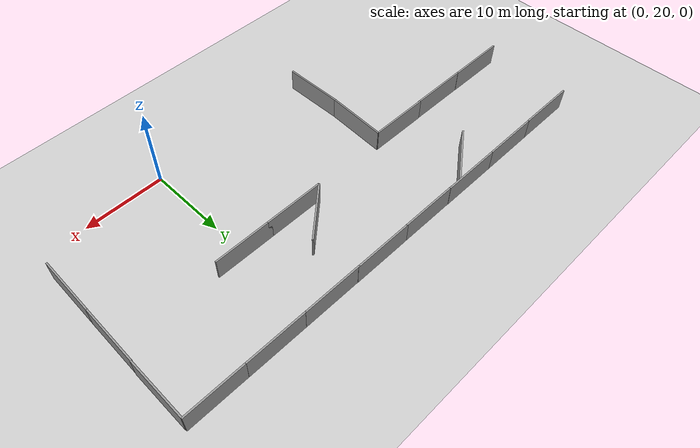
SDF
<sdf version="1.4">
 <world name="default">
  <model name="ground_plane">
   <static>1</static>
   <link name="link">
    <collision name="collision">
     <geometry><plane><normal>0 0 1</normal><size>100 100</size></plane></geometry>
     <surface><friction><ode><mu>100</mu><mu2>50</mu2></ode></friction></surface>
    </collision>
    <visual name="visual">
     <cast_shadows>0</cast_shadows>
     <geometry><plane><normal>0 0 1</normal><size>100 100</size></plane></geometry>
     <material>
      <script><uri>file://media/materials/scripts/gazebo.material</uri><name>Gazebo/Grey</name></script>
     </material>
    </visual>
    <velocity_decay><linear>0</linear><angular>0</angular></velocity_decay>
   </link>
  </model>
  <model name="grey_wall_11">
   <static>1</static>
   <link name="link">
    <pose>0 0 1.4 0 -0 0</pose>
    <collision name="collision"><geometry><box><size>7.5 0.2 2.8</size></box></geometry></collision>
    <visual name="visual">
     <cast_shadows>0</cast_shadows>
     <geometry><box><size>7.5 0.2 2.8</size></box></geometry>
     <material>
      <script>
       <uri>model://grey_wall/materials/scripts</uri>
       <uri>model://grey_wall/materials/textures</uri>
       <name>vrc/grey_wall</name>
      </script>
     </material>
    </visual>
    <velocity_decay><linear>0</linear><angular>0</angular></velocity_decay>
   </link>
   <pose>15.8981 34.2262 0 0 0 -1.58174</pose>
  </model>
  <model name="grey_wall_12">
   <static>1</static>
   <link name="link">
    <pose>0 0 1.4 0 -0 0</pose>
    <collision name="collision"><geometry><box><size>7.5 0.2 2.8</size></box></geometry></collision>
    <visual name="visual">
     <cast_shadows>0</cast_shadows>
     <geometry><box><size>7.5 0.2 2.8</size></box></geometry>
     <material>
      <script>
       <uri>model://grey_wall/materials/scripts</uri>
       <uri>model://grey_wall/materials/textures</uri>
       <name>vrc/grey_wall</name>
      </script>
     </material>
    </visual>
    <velocity_decay><linear>0</linear><angular>0</angular></velocity_decay>
   </link>
   <pose>15.8003 26.8897 0 0 0 -1.58522</pose>
  </model>
  <model name="grey_wall_14">
   <static>1</static>
   <link name="link">
    <pose>0 0 1.4 0 -0 0</pose>
    <collision name="collision"><geometry><box><size>7.5 0.2 2.8</size></box></geometry></collision>
    <visual name="visual">
     <cast_shadows>0</cast_shadows>
     <geometry><box><size>7.5 0.2 2.8</size></box></geometry>
     <material>
      <script>
       <uri>model://grey_wall/materials/scripts</uri>
       <uri>model://grey_wall/materials/textures</uri>
       <name>vrc/grey_wall</name>
      </script>
     </material>
    </visual>
    <velocity_decay><linear>0</linear><angular>0</angular></velocity_decay>
   </link>
   <pose>15.9757 41.6543 0 0 0 -1.57098</pose>
  </model>
  <model name="grey_wall_20">
   <static>1</static>
   <link name="link">
    <pose>0 0 1.4 0 -0 0</pose>
    <collision name="collision"><geometry><box><size>7.5 0.2 2.8</size></box></geometry></collision>
    <visual name="visual">
     <cast_shadows>0</cast_shadows>
     <geometry><box><size>7.5 0.2 2.8</size></box></geometry>
     <material>
      <script>
       <uri>model://grey_wall/materials/scripts</uri>
       <uri>model://grey_wall/materials/textures</uri>
       <name>vrc/grey_wall</name>
      </script>
     </material>
    </visual>
    <velocity_decay><linear>0</linear><angular>0</angular></velocity_decay>
   </link>
   <pose>-31.1365 45.5106 0 0 -0 0</pose>
  </model>
  <model name="grey_wall_21">
   <static>1</static>
   <link name="link">
    <pose>0 0 1.4 0 -0 0</pose>
    <collision name="collision"><geometry><box><size>7.5 0.2 2.8</size></box></geometry></collision>
    <visual name="visual">
     <cast_shadows>0</cast_shadows>
     <geometry><box><size>7.5 0.2 2.8</size></box></geometry>
     <material>
      <script>
       <uri>model://grey_wall/materials/scripts</uri>
       <uri>model://grey_wall/materials/textures</uri>
       <name>vrc/grey_wall</name>
      </script>
     </material>
    </visual>
    <velocity_decay><linear>0</linear><angular>0</angular></velocity_decay>
   </link>
   <pose>-24.0972 45.5131 0 0 -0 0</pose>
  </model>
  <model name="grey_wall_22">
   <static>1</static>
   <link name="link">
    <pose>0 0 1.4 0 -0 0</pose>
    <collision name="collision"><geometry><box><size>7.5 0.2 2.8</size></box></geometry></collision>
    <visual name="visual">
     <cast_shadows>0</cast_shadows>
     <geometry><box><size>7.5 0.2 2.8</size></box></geometry>
     <material>
      <script>
       <uri>model://grey_wall/materials/scripts</uri>
       <uri>model://grey_wall/materials/textures</uri>
       <name>vrc/grey_wall</name>
      </script>
     </material>
    </visual>
    <velocity_decay><linear>0</linear><angular>0</angular></velocity_decay>
   </link>
   <pose>-16.9789 45.491 0 0 -0 0</pose>
  </model>
  <model name="grey_wall_23">
   <static>1</static>
   <link name="link">
    <pose>0 0 1.4 0 -0 0</pose>
    <collision name="collision"><geometry><box><size>7.5 0.2 2.8</size></box></geometry></collision>
    <visual name="visual">
     <cast_shadows>0</cast_shadows>
     <geometry><box><size>7.5 0.2 2.8</size></box></geometry>
     <material>
      <script>
       <uri>model://grey_wall/materials/scripts</uri>
       <uri>model://grey_wall/materials/textures</uri>
       <name>vrc/grey_wall</name>
      </script>
     </material>
    </visual>
    <velocity_decay><linear>0</linear><angular>0</angular></velocity_decay>
   </link>
   <pose>-9.61692 45.4978 0 0 -0 0</pose>
  </model>
  <model name="grey_wall_24">
   <static>1</static>
   <link name="link">
    <pose>0 0 1.4 0 -0 0</pose>
    <collision name="collision"><geometry><box><size>7.5 0.2 2.8</size></box></geometry></collision>
    <visual name="visual">
     <cast_shadows>0</cast_shadows>
     <geometry><box><size>7.5 0.2 2.8</size></box></geometry>
     <material>
      <script>
       <uri>model://grey_wall/materials/scripts</uri>
       <uri>model://grey_wall/materials/textures</uri>
       <name>vrc/grey_wall</name>
      </script>
     </material>
    </visual>
    <velocity_decay><linear>0</linear><angular>0</angular></velocity_decay>
   </link>
   <pose>-2.36117 45.4782 0 0 -0 0</pose>
  </model>
  <model name="grey_wall_25">
   <static>1</static>
   <link name="link">
    <pose>0 0 1.4 0 -0 0</pose>
    <collision name="collision"><geometry><box><size>7.5 0.2 2.8</size></box></geometry></collision>
    <visual name="visual">
     <cast_shadows>0</cast_shadows>
     <geometry><box><size>7.5 0.2 2.8</size></box></geometry>
     <material>
      <script>
       <uri>model://grey_wall/materials/scripts</uri>
       <uri>model://grey_wall/materials/textures</uri>
       <name>vrc/grey_wall</name>
      </script>
     </material>
    </visual>
    <velocity_decay><linear>0</linear><angular>0</angular></velocity_decay>
   </link>
   <pose>5.03291 45.474 0 0 -0 0</pose>
  </model>
  <model name="grey_wall_26">
   <static>1</static>
   <link name="link">
    <pose>0 0 1.4 0 -0 0</pose>
    <collision name="collision"><geometry><box><size>7.5 0.2 2.8</size></box></geometry></collision>
    <visual name="visual">
     <cast_shadows>0</cast_shadows>
     <geometry><box><size>7.5 0.2 2.8</size></box></geometry>
     <material>
      <script>
       <uri>model://grey_wall/materials/scripts</uri>
       <uri>model://grey_wall/materials/textures</uri>
       <name>vrc/grey_wall</name>
      </script>
     </material>
    </visual>
    <velocity_decay><linear>0</linear><angular>0</angular></velocity_decay>
   </link>
   <pose>12.2917 45.4674 0 0 -0 0</pose>
  </model>
  <model name="grey_wall_28">
   <static>1</static>
   <link name="link">
    <pose>0 0 1.4 0 -0 0</pose>
    <collision name="collision"><geometry><box><size>7.5 0.2 2.8</size></box></geometry></collision>
    <visual name="visual">
     <cast_shadows>0</cast_shadows>
     <geometry><box><size>7.5 0.2 2.8</size></box></geometry>
     <material>
      <script>
       <uri>model://grey_wall/materials/scripts</uri>
       <uri>model://grey_wall/materials/textures</uri>
       <name>vrc/grey_wall</name>
      </script>
     </material>
    </visual>
    <velocity_decay><linear>0</linear><angular>0</angular></velocity_decay>
   </link>
   <pose>-21.3437 23.2399 0 0 0 -1.55853</pose>
  </model>
  <model name="grey_wall_29">
   <static>1</static>
   <link name="link">
    <pose>0 0 1.4 0 -0 0</pose>
    <collision name="collision"><geometry><box><size>7.5 0.2 2.8</size></box></geometry></collision>
    <visual name="visual">
     <cast_shadows>0</cast_shadows>
     <geometry><box><size>7.5 0.2 2.8</size></box></geometry>
     <material>
      <script>
       <uri>model://grey_wall/materials/scripts</uri>
       <uri>model://grey_wall/materials/textures</uri>
       <name>vrc/grey_wall</name>
      </script>
     </material>
    </visual>
    <velocity_decay><linear>0</linear><angular>0</angular></velocity_decay>
   </link>
   <pose>-21.1799 30.6302 0 0 -0 1.51593</pose>
  </model>
  <model name="grey_wall_30">
   <static>1</static>
   <link name="link">
    <pose>0 0 1.4 0 -0 0</pose>
    <collision name="collision"><geometry><box><size>7.5 0.2 2.8</size></box></geometry></collision>
    <visual name="visual">
     <cast_shadows>0</cast_shadows>
     <geometry><box><size>7.5 0.2 2.8</size></box></geometry>
     <material>
      <script>
       <uri>model://grey_wall/materials/scripts</uri>
       <uri>model://grey_wall/materials/textures</uri>
       <name>vrc/grey_wall</name>
      </script>
     </material>
    </visual>
    <velocity_decay><linear>0</linear><angular>0</angular></velocity_decay>
   </link>
   <pose>-39.3552 34.3146 0 0 -0 0</pose>
  </model>
  <model name="grey_wall_31">
   <static>1</static>
   <link name="link">
    <pose>0 0 1.4 0 -0 0</pose>
    <collision name="collision"><geometry><box><size>7.5 0.2 2.8</size></box></geometry></collision>
    <visual name="visual">
     <cast_shadows>0</cast_shadows>
     <geometry><box><size>7.5 0.2 2.8</size></box></geometry>
     <material>
      <script>
       <uri>model://grey_wall/materials/scripts</uri>
       <uri>model://grey_wall/materials/textures</uri>
       <name>vrc/grey_wall</name>
      </script>
     </material>
    </visual>
    <velocity_decay><linear>0</linear><angular>0</angular></velocity_decay>
   </link>
   <pose>-31.9612 34.2947 0 0 -0 0</pose>
  </model>
  <model name="grey_wall_32">
   <static>1</static>
   <link name="link">
    <pose>0 0 1.4 0 -0 0</pose>
    <collision name="collision"><geometry><box><size>7.5 0.2 2.8</size></box></geometry></collision>
    <visual name="visual">
     <cast_shadows>0</cast_shadows>
     <geometry><box><size>7.5 0.2 2.8</size></box></geometry>
     <material>
      <script>
       <uri>model://grey_wall/materials/scripts</uri>
       <uri>model://grey_wall/materials/textures</uri>
       <name>vrc/grey_wall</name>
      </script>
     </material>
    </visual>
    <velocity_decay><linear>0</linear><angular>0</angular></velocity_decay>
   </link>
   <pose>-24.72 34.324 0 0 -0 0</pose>
  </model>
  <model name="grey_wall_33">
   <static>1</static>
   <link name="link">
    <pose>0 0 1.4 0 -0 0</pose>
    <collision name="collision"><geometry><box><size>7.5 0.2 2.8</size></box></geometry></collision>
    <visual name="visual">
     <cast_shadows>0</cast_shadows>
     <geometry><box><size>7.5 0.2 2.8</size></box></geometry>
     <material>
      <script>
       <uri>model://grey_wall/materials/scripts</uri>
       <uri>model://grey_wall/materials/textures</uri>
       <name>vrc/grey_wall</name>
      </script>
     </material>
    </visual>
    <velocity_decay><linear>0</linear><angular>0</angular></velocity_decay>
   </link>
   <pose>-38.5263 45.4975 0 0 -0 0</pose>
  </model>
  <model name="grey_wall">
   <static>1</static>
   <link name="link">
    <pose>0 0 1.4 0 -0 0</pose>
    <collision name="collision"><geometry><box><size>7.5 0.2 2.8</size></box></geometry></collision>
    <visual name="visual">
     <cast_shadows>0</cast_shadows>
     <geometry><box><size>7.5 0.2 2.8</size></box></geometry>
     <material>
      <script>
       <uri>model://grey_wall/materials/scripts</uri>
       <uri>model://grey_wall/materials/textures</uri>
       <name>vrc/grey_wall</name>
      </script>
     </material>
    </visual>
    <velocity_decay><linear>0</linear><angular>0</angular></velocity_decay>
   </link>
   <pose>0 35 0 0 -0 0</pose>
  </model>
  <model name="grey_wall_5">
   <static>1</static>
   <link name="link">
    <pose>0 0 1.4 0 -0 0</pose>
    <collision name="collision"><geometry><box><size>7.5 0.2 2.8</size></box></geometry></collision>
    <visual name="visual">
     <cast_shadows>0</cast_shadows>
     <geometry><box><size>7.5 0.2 2.8</size></box></geometry>
     <material>
      <script>
       <uri>model://grey_wall/materials/scripts</uri>
       <uri>model://grey_wall/materials/textures</uri>
       <name>vrc/grey_wall</name>
      </script>
     </material>
    </visual>
    <velocity_decay><linear>0</linear><angular>0</angular></velocity_decay>
   </link>
   <pose>-7 35 0 0 -0 0</pose>
  </model>
  <model name="grey_wall_36">
   <static>1</static>
   <link name="link">
    <pose>0 0 1.4 0 -0 0</pose>
    <collision name="collision"><geometry><box><size>7.5 0.2 2.8</size></box></geometry></collision>
    <visual name="visual">
     <cast_shadows>0</cast_shadows>
     <geometry><box><size>7.5 0.2 2.8</size></box></geometry>
     <material>
      <script>
       <uri>model://grey_wall/materials/scripts</uri>
       <uri>model://grey_wall/materials/textures</uri>
       <name>vrc/grey_wall</name>
      </script>
     </material>
    </visual>
    <velocity_decay><linear>0</linear><angular>0</angular></velocity_decay>
   </link>
   <pose>-7.88989 37.4617 0 0 -0 0.709226</pose>
  </model>
  <model name="grey_wall_38">
   <static>1</static>
   <link name="link">
    <pose>0 0 1.4 0 -0 0</pose>
    <collision name="collision"><geometry><box><size>7.5 0.2 2.8</size></box></geometry></collision>
    <visual name="visual">
     <cast_shadows>0</cast_shadows>
     <geometry><box><size>7.5 0.2 2.8</size></box></geometry>
     <material>
      <script>
       <uri>model://grey_wall/materials/scripts</uri>
       <uri>model://grey_wall/materials/textures</uri>
       <name>vrc/grey_wall</name>
      </script>
     </material>
    </visual>
    <velocity_decay><linear>0</linear><angular>0</angular></velocity_decay>
   </link>
   <pose>-25.1417 43.2914 0 0 -0 0.628148</pose>
  </model>
 </world>
</sdf>
